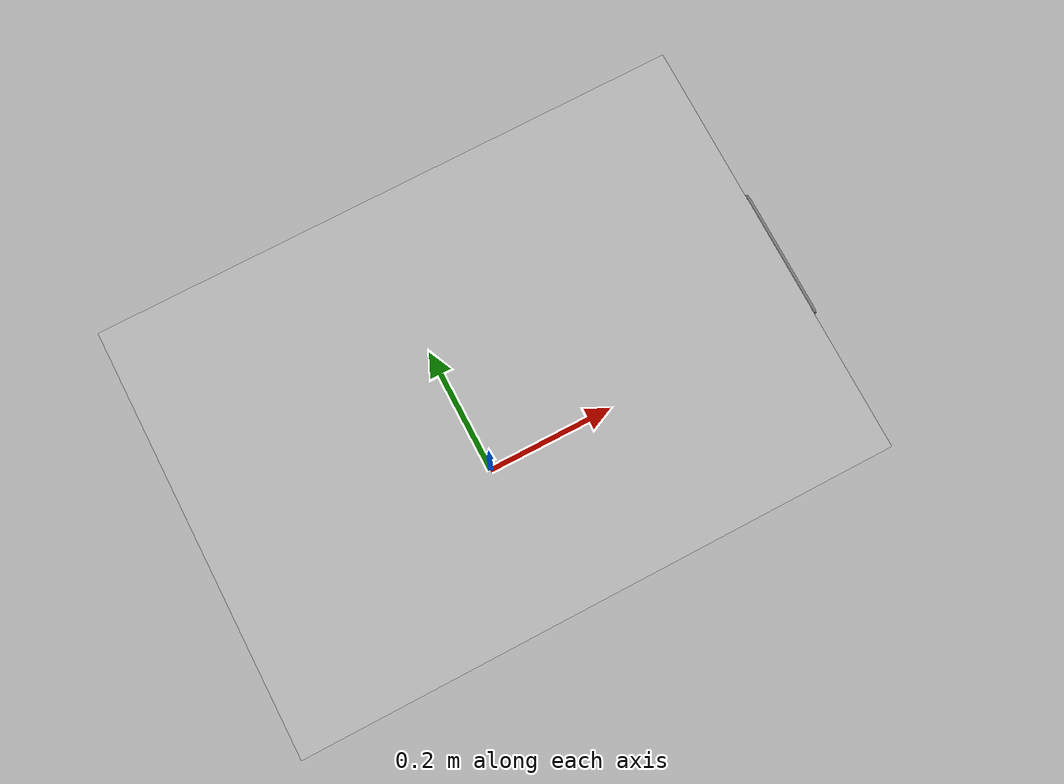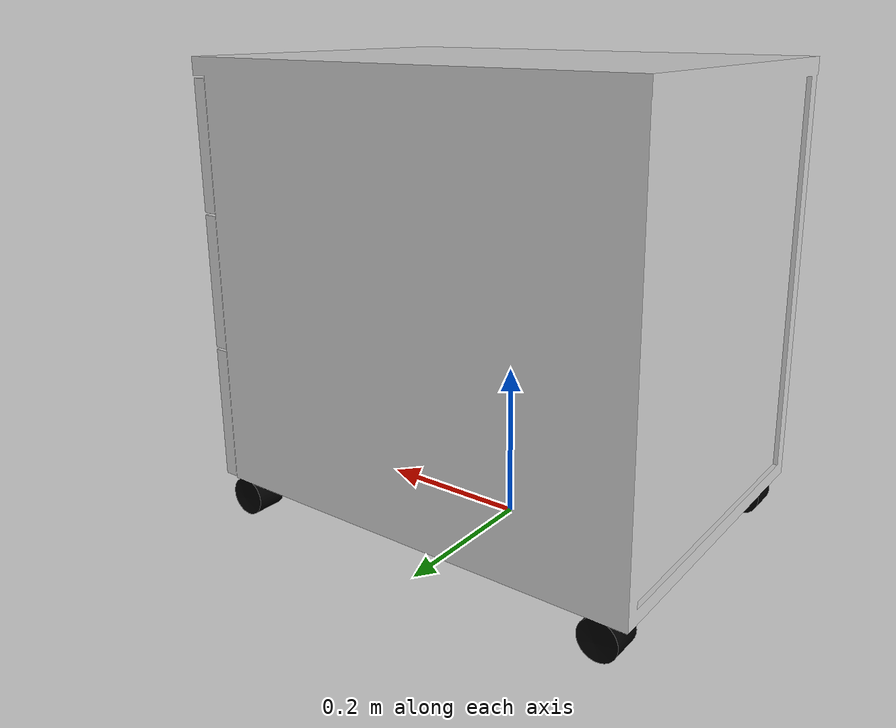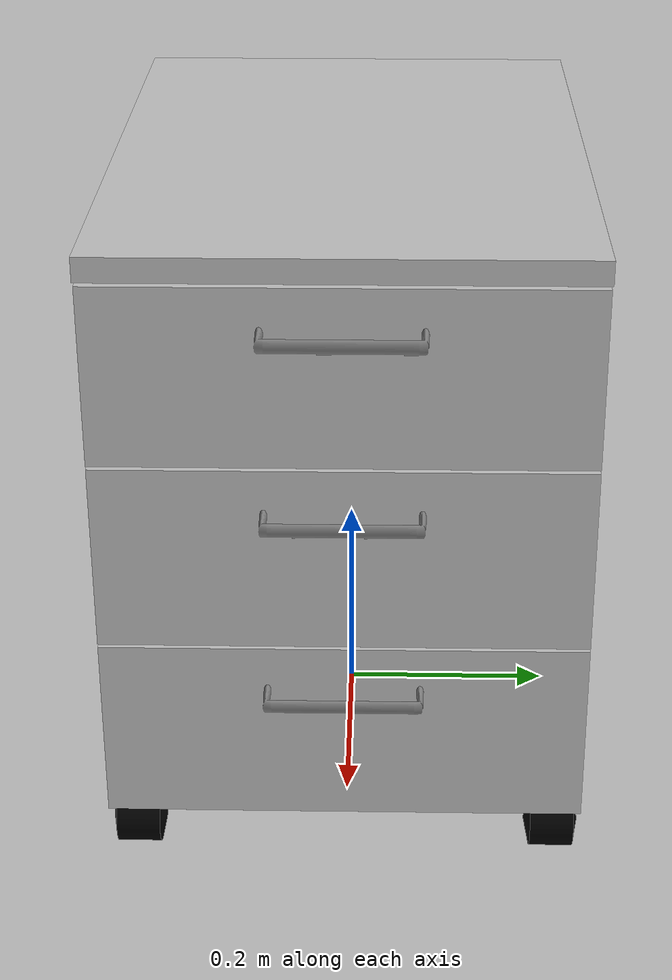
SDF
<?xml version="1.0" ?>
<sdf version="1.5">
  <model name="driving_cabinet_3d">
    <static>true</static>
    <link name="driving_cabinet_3d">
      <collision name="driving_cabinet_3d">
        <pose>0 0 0 0 0 0</pose>
        <geometry>
          <mesh>
            <uri>model://driving_cabinet_3d/meshes/model.dae</uri>
          </mesh>
        </geometry>
      </collision>

      <visual name="driving_cabinet_3d">
      <cast_shadows>true</cast_shadows>
        <geometry>
          <mesh>
          <uri>model://driving_cabinet_3d/meshes/model.dae</uri>
        </mesh>
        </geometry>
      </visual>
    </link>
  </model>
</sdf>
